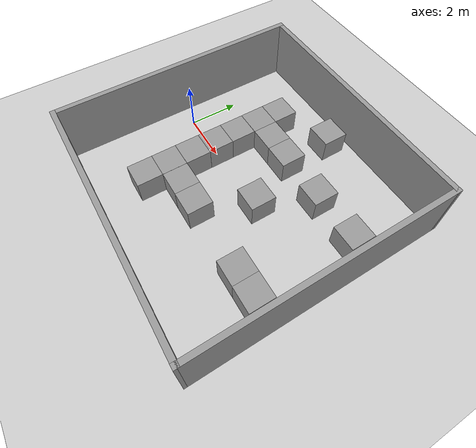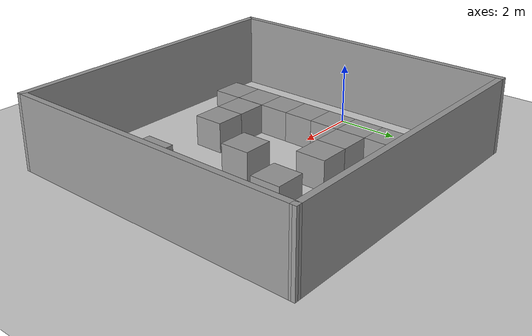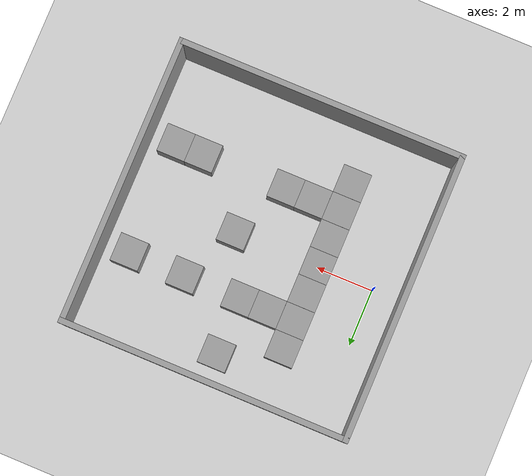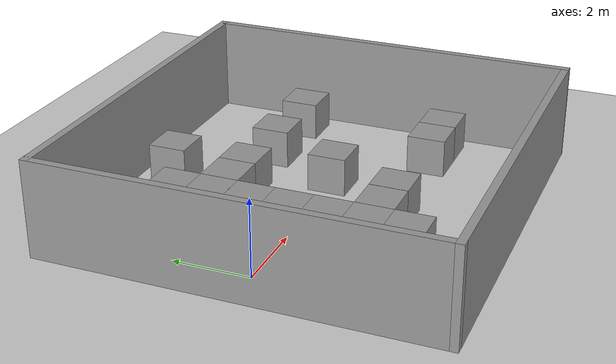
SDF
<sdf version="1.4">
 <world name="default">
  <light name="sun" type="directional">
   <pose>0 0 10 0 -0 0</pose>
   <diffuse>0.8 0.8 0.8 1</diffuse>
   <specular>0.2 0.2 0.2 1</specular>
   <attenuation>
    <range>1000</range>
    <constant>0.9</constant>
    <linear>0.01</linear>
    <quadratic>0.001</quadratic>
   </attenuation>
   <direction>-0.5 0.1 -0.9</direction>
  </light>
  <model name="ground_plane">
   <static>1</static>
   <link name="link">
    <collision name="collision">
     <geometry><plane><normal>0 0 1</normal><size>100 100</size></plane></geometry>
     <surface><friction><ode><mu>100</mu><mu2>50</mu2></ode></friction></surface>
    </collision>
    <visual name="visual">
     <cast_shadows>0</cast_shadows>
     <geometry><plane><normal>0 0 1</normal><size>100 100</size></plane></geometry>
     <material>
      <script><uri>file://media/materials/scripts/gazebo.material</uri><name>Gazebo/Grey</name></script>
     </material>
    </visual>
    <velocity_decay><linear>0</linear><angular>0</angular></velocity_decay>
   </link>
  </model>
  <physics type="ode">
   <max_step_size>0.001</max_step_size>
   <real_time_factor>1</real_time_factor>
   <real_time_update_rate>1000</real_time_update_rate>
   <gravity>0 0 -9.8</gravity>
  </physics>
  <scene><ambient>0.4 0.4 0.4 1</ambient><background>0.7 0.7 0.7 1</background><shadows>1</shadows></scene>
  <spherical_coordinates>
   <surface_model>EARTH_WGS84</surface_model>
   <latitude_deg>0</latitude_deg>
   <longitude_deg>0</longitude_deg>
   <elevation>0</elevation>
   <heading_deg>0</heading_deg>
  </spherical_coordinates>
  <model name="Square">
   <link name="Wall_10">
    <collision name="Wall_10_Collision">
     <geometry><box><size>10.2 0.2 2.5</size></box></geometry>
     <pose>0 0 1.25 0 -0 0</pose>
    </collision>
    <visual name="Wall_10_Visual">
     <pose>0 0 1.25 0 -0 0</pose>
     <geometry><box><size>10.2 0.2 2.5</size></box></geometry>
     <material>
      <script><uri>file://media/materials/scripts/gazebo.material</uri><name>Gazebo/Grey</name></script>
     </material>
    </visual>
    <velocity_decay><linear>0</linear><angular>0</angular></velocity_decay>
    <pose>4 -5 0 0 -0 3.14159</pose>
   </link>
   <link name="Wall_11">
    <collision name="Wall_11_Collision">
     <geometry><box><size>10.2 0.2 2.5</size></box></geometry>
     <pose>0 0 1.25 0 -0 0</pose>
    </collision>
    <visual name="Wall_11_Visual">
     <pose>0 0 1.25 0 -0 0</pose>
     <geometry><box><size>10.2 0.2 2.5</size></box></geometry>
     <material>
      <script><uri>file://media/materials/scripts/gazebo.material</uri><name>Gazebo/Grey</name></script>
     </material>
    </visual>
    <velocity_decay><linear>0</linear><angular>0</angular></velocity_decay>
    <pose>-1 0 0 0 -0 1.5708</pose>
   </link>
   <link name="Wall_12">
    <collision name="Wall_12_Collision">
     <geometry><box><size>10.208 0.2 2.5</size></box></geometry>
     <pose>0 0 1.25 0 -0 0</pose>
    </collision>
    <visual name="Wall_12_Visual">
     <pose>0 0 1.25 0 -0 0</pose>
     <geometry><box><size>10.208 0.2 2.5</size></box></geometry>
     <material>
      <script><uri>file://media/materials/scripts/gazebo.material</uri><name>Gazebo/Grey</name></script>
     </material>
    </visual>
    <velocity_decay><linear>0</linear><angular>0</angular></velocity_decay>
    <pose>4.004 5 0 0 -0 0</pose>
   </link>
   <link name="Wall_13">
    <collision name="Wall_13_Collision">
     <geometry><box><size>10.2 0.2 2.5</size></box></geometry>
     <pose>0 0 1.25 0 -0 0</pose>
    </collision>
    <visual name="Wall_13_Visual">
     <pose>0 0 1.25 0 -0 0</pose>
     <geometry><box><size>10.2 0.2 2.5</size></box></geometry>
     <material>
      <script><uri>file://media/materials/scripts/gazebo.material</uri><name>Gazebo/Grey</name></script>
     </material>
    </visual>
    <velocity_decay><linear>0</linear><angular>0</angular></velocity_decay>
    <pose>9.004 0 0 0 0 -1.5716</pose>
   </link>
   <static>1</static>
  </model>
  <model name="unit_box_5">
   <pose>1.9999 2.0003 0.5 0 -0 -9.5e-05</pose>
   <link name="link">
    <inertial>
     <mass>1</mass>
     <inertia><ixx>1</ixx><ixy>0</ixy><ixz>0</ixz><iyy>1</iyy><iyz>0</iyz><izz>1</izz></inertia>
    </inertial>
    <collision name="collision"><geometry><box><size>1 1 1</size></box></geometry></collision>
    <visual name="visual">
     <geometry><box><size>1 1 1</size></box></geometry>
     <material>
      <script><uri>file://media/materials/scripts/gazebo.material</uri><name>Gazebo/Grey</name></script>
     </material>
    </visual>
    <velocity_decay><linear>0</linear><angular>0</angular></velocity_decay>
   </link>
   <static>0</static>
  </model>
  <model name="unit_box_6">
   <pose>3.00014 -2.00006 0.49804 0 -0 -1.2e-05</pose>
   <link name="link">
    <inertial>
     <mass>1</mass>
     <inertia><ixx>1</ixx><ixy>0</ixy><ixz>0</ixz><iyy>1</iyy><iyz>0</iyz><izz>1</izz></inertia>
    </inertial>
    <collision name="collision"><geometry><box><size>1 1 1</size></box></geometry></collision>
    <visual name="visual">
     <geometry><box><size>1 1 1</size></box></geometry>
     <material>
      <script><uri>file://media/materials/scripts/gazebo.material</uri><name>Gazebo/Grey</name></script>
     </material>
    </visual>
    <velocity_decay><linear>0</linear><angular>0</angular></velocity_decay>
   </link>
   <static>0</static>
  </model>
  <model name="unit_box_7">
   <pose>4.00024 -1.99995 0.5 0 0 -1.3e-05</pose>
   <link name="link">
    <inertial>
     <mass>1</mass>
     <inertia><ixx>1</ixx><ixy>0</ixy><ixz>0</ixz><iyy>1</iyy><iyz>0</iyz><izz>1</izz></inertia>
    </inertial>
    <collision name="collision"><geometry><box><size>1 1 1</size></box></geometry></collision>
    <visual name="visual">
     <geometry><box><size>1 1 1</size></box></geometry>
     <material>
      <script><uri>file://media/materials/scripts/gazebo.material</uri><name>Gazebo/Grey</name></script>
     </material>
    </visual>
    <velocity_decay><linear>0</linear><angular>0</angular></velocity_decay>
   </link>
   <static>0</static>
  </model>
  <model name="unit_box_8">
   <pose>3.00019 1.99994 0.5 0 -0 0.000174</pose>
   <link name="link">
    <inertial>
     <mass>1</mass>
     <inertia><ixx>1</ixx><ixy>0</ixy><ixz>0</ixz><iyy>1</iyy><iyz>0</iyz><izz>1</izz></inertia>
    </inertial>
    <collision name="collision"><geometry><box><size>1 1 1</size></box></geometry></collision>
    <visual name="visual">
     <geometry><box><size>1 1 1</size></box></geometry>
     <material>
      <script><uri>file://media/materials/scripts/gazebo.material</uri><name>Gazebo/Grey</name></script>
     </material>
    </visual>
    <velocity_decay><linear>0</linear><angular>0</angular></velocity_decay>
   </link>
   <static>0</static>
  </model>
  <model name="unit_box_9">
   <pose>4.00028 1.99992 0.5 0 -0 0.000229</pose>
   <link name="link">
    <inertial>
     <mass>1</mass>
     <inertia><ixx>1</ixx><ixy>0</ixy><ixz>0</ixz><iyy>1</iyy><iyz>0</iyz><izz>1</izz></inertia>
    </inertial>
    <collision name="collision"><geometry><box><size>1 1 1</size></box></geometry></collision>
    <visual name="visual">
     <geometry><box><size>1 1 1</size></box></geometry>
     <material>
      <script><uri>file://media/materials/scripts/gazebo.material</uri><name>Gazebo/Grey</name></script>
     </material>
    </visual>
    <velocity_decay><linear>0</linear><angular>0</angular></velocity_decay>
   </link>
   <static>0</static>
  </model>
  <model name="unit_box_10">
   <pose>2.00009 -3.00039 0.5 0 -0 1.8e-05</pose>
   <link name="link">
    <inertial>
     <mass>1</mass>
     <inertia><ixx>1</ixx><ixy>0</ixy><ixz>0</ixz><iyy>1</iyy><iyz>0</iyz><izz>1</izz></inertia>
    </inertial>
    <collision name="collision"><geometry><box><size>1 1 1</size></box></geometry></collision>
    <visual name="visual">
     <geometry><box><size>1 1 1</size></box></geometry>
     <material>
      <script><uri>file://media/materials/scripts/gazebo.material</uri><name>Gazebo/Grey</name></script>
     </material>
    </visual>
    <velocity_decay><linear>0</linear><angular>0</angular></velocity_decay>
   </link>
   <static>0</static>
  </model>
  <model name="unit_box_12">
   <pose>2.00017 3.00039 0.499925 -1.1e-05 0.000161 7.3e-05</pose>
   <link name="link">
    <inertial>
     <mass>1</mass>
     <inertia><ixx>1</ixx><ixy>0</ixy><ixz>0</ixz><iyy>1</iyy><iyz>0</iyz><izz>1</izz></inertia>
    </inertial>
    <collision name="collision"><geometry><box><size>1 1 1</size></box></geometry></collision>
    <visual name="visual">
     <geometry><box><size>1 1 1</size></box></geometry>
     <material>
      <script><uri>file://media/materials/scripts/gazebo.material</uri><name>Gazebo/Grey</name></script>
     </material>
    </visual>
    <velocity_decay><linear>0</linear><angular>0</angular></velocity_decay>
   </link>
   <static>0</static>
  </model>
  <model name="unit_box_13">
   <pose>4 4 0.5 0 -0 0</pose>
   <link name="link">
    <inertial>
     <mass>1</mass>
     <inertia><ixx>1</ixx><ixy>0</ixy><ixz>0</ixz><iyy>1</iyy><iyz>0</iyz><izz>1</izz></inertia>
    </inertial>
    <collision name="collision"><geometry><box><size>1 1 1</size></box></geometry></collision>
    <visual name="visual">
     <geometry><box><size>1 1 1</size></box></geometry>
     <material>
      <script><uri>file://media/materials/scripts/gazebo.material</uri><name>Gazebo/Grey</name></script>
     </material>
    </visual>
    <velocity_decay><linear>0</linear><angular>0</angular></velocity_decay>
   </link>
   <static>0</static>
  </model>
  <model name="unit_box_15">
   <pose>6 2 0.5 0 -0 0</pose>
   <link name="link">
    <inertial>
     <mass>1</mass>
     <inertia><ixx>1</ixx><ixy>0</ixy><ixz>0</ixz><iyy>1</iyy><iyz>0</iyz><izz>1</izz></inertia>
    </inertial>
    <collision name="collision"><geometry><box><size>1 1 1</size></box></geometry></collision>
    <visual name="visual">
     <geometry><box><size>1 1 1</size></box></geometry>
     <material>
      <script><uri>file://media/materials/scripts/gazebo.material</uri><name>Gazebo/Grey</name></script>
     </material>
    </visual>
    <velocity_decay><linear>0</linear><angular>0</angular></velocity_decay>
   </link>
   <static>0</static>
  </model>
  <model name="unit_box_16">
   <pose>8 -2 0.5 0 -0 0</pose>
   <link name="link">
    <inertial>
     <mass>1</mass>
     <inertia><ixx>1</ixx><ixy>0</ixy><ixz>0</ixz><iyy>1</iyy><iyz>0</iyz><izz>1</izz></inertia>
    </inertial>
    <collision name="collision"><geometry><box><size>1 1 1</size></box></geometry></collision>
    <visual name="visual">
     <geometry><box><size>1 1 1</size></box></geometry>
     <material>
      <script><uri>file://media/materials/scripts/gazebo.material</uri><name>Gazebo/Grey</name></script>
     </material>
    </visual>
    <velocity_decay><linear>0</linear><angular>0</angular></velocity_decay>
   </link>
   <static>0</static>
  </model>
  <model name="unit_box_17">
   <pose>8 2 0.5 0 -0 0</pose>
   <link name="link">
    <inertial>
     <mass>1</mass>
     <inertia><ixx>1</ixx><ixy>0</ixy><ixz>0</ixz><iyy>1</iyy><iyz>0</iyz><izz>1</izz></inertia>
    </inertial>
    <collision name="collision"><geometry><box><size>1 1 1</size></box></geometry></collision>
    <visual name="visual">
     <geometry><box><size>1 1 1</size></box></geometry>
     <material>
      <script><uri>file://media/materials/scripts/gazebo.material</uri><name>Gazebo/Grey</name></script>
     </material>
    </visual>
    <velocity_decay><linear>0</linear><angular>0</angular></velocity_decay>
   </link>
   <static>0</static>
  </model>
  <model name="unit_box_18">
   <pose>5 0 0.5 0 -0 0</pose>
   <link name="link">
    <inertial>
     <mass>1</mass>
     <inertia><ixx>1</ixx><ixy>0</ixy><ixz>0</ixz><iyy>1</iyy><iyz>0</iyz><izz>1</izz></inertia>
    </inertial>
    <collision name="collision"><geometry><box><size>1 1 1</size></box></geometry></collision>
    <visual name="visual">
     <geometry><box><size>1 1 1</size></box></geometry>
     <material>
      <script><uri>file://media/materials/scripts/gazebo.material</uri><name>Gazebo/Grey</name></script>
     </material>
    </visual>
    <velocity_decay><linear>0</linear><angular>0</angular></velocity_decay>
   </link>
   <static>0</static>
  </model>
  <model name="unit_box_19">
   <pose>7 -2 0.5 0 -0 0</pose>
   <link name="link">
    <inertial>
     <mass>1</mass>
     <inertia><ixx>1</ixx><ixy>0</ixy><ixz>0</ixz><iyy>1</iyy><iyz>0</iyz><izz>1</izz></inertia>
    </inertial>
    <collision name="collision"><geometry><box><size>1 1 1</size></box></geometry></collision>
    <visual name="visual">
     <geometry><box><size>1 1 1</size></box></geometry>
     <material>
      <script><uri>file://media/materials/scripts/gazebo.material</uri><name>Gazebo/Grey</name></script>
     </material>
    </visual>
    <velocity_decay><linear>0</linear><angular>0</angular></velocity_decay>
   </link>
   <static>0</static>
  </model>
  <spherical_coordinates>
   <surface_model>EARTH_WGS84</surface_model>
   <latitude_deg>0</latitude_deg>
   <longitude_deg>0</longitude_deg>
   <elevation>0</elevation>
   <heading_deg>0</heading_deg>
  </spherical_coordinates>
  <model name="unit_box_1">
   <pose>1.99995 -2.00021 0.5 0 -0 2.3e-05</pose>
   <link name="link">
    <inertial>
     <mass>1</mass>
     <inertia><ixx>1</ixx><ixy>0</ixy><ixz>0</ixz><iyy>1</iyy><iyz>0</iyz><izz>1</izz></inertia>
    </inertial>
    <collision name="collision"><geometry><box><size>1 1 1</size></box></geometry></collision>
    <visual name="visual">
     <geometry><box><size>1 1 1</size></box></geometry>
     <material>
      <script><uri>file://media/materials/scripts/gazebo.material</uri><name>Gazebo/Grey</name></script>
     </material>
    </visual>
    <velocity_decay><linear>0</linear><angular>0</angular></velocity_decay>
   </link>
   <static>0</static>
  </model>
  <model name="unit_box_2">
   <pose>2.00006 -1.00019 0.499956 0 -8.9e-05 2.7e-05</pose>
   <link name="link">
    <inertial>
     <mass>1</mass>
     <inertia><ixx>1</ixx><ixy>0</ixy><ixz>0</ixz><iyy>1</iyy><iyz>0</iyz><izz>1</izz></inertia>
    </inertial>
    <collision name="collision"><geometry><box><size>1 1 1</size></box></geometry></collision>
    <visual name="visual">
     <geometry><box><size>1 1 1</size></box></geometry>
     <material>
      <script><uri>file://media/materials/scripts/gazebo.material</uri><name>Gazebo/Grey</name></script>
     </material>
    </visual>
    <velocity_decay><linear>0</linear><angular>0</angular></velocity_decay>
   </link>
   <static>0</static>
  </model>
  <model name="unit_box_3">
   <pose>2.0005 -3.8e-05 0.499857 0 0.000286 -0.000231</pose>
   <link name="link">
    <inertial>
     <mass>1</mass>
     <inertia><ixx>1</ixx><ixy>0</ixy><ixz>0</ixz><iyy>1</iyy><iyz>0</iyz><izz>1</izz></inertia>
    </inertial>
    <collision name="collision"><geometry><box><size>1 1 1</size></box></geometry></collision>
    <visual name="visual">
     <geometry><box><size>1 1 1</size></box></geometry>
     <material>
      <script><uri>file://media/materials/scripts/gazebo.material</uri><name>Gazebo/Grey</name></script>
     </material>
    </visual>
    <velocity_decay><linear>0</linear><angular>0</angular></velocity_decay>
   </link>
   <static>0</static>
  </model>
  <model name="unit_box_4">
   <pose>1.99994 1.00002 0.49907 -3.30872e-24 9.9e-05 -0.000211</pose>
   <link name="link">
    <inertial>
     <mass>1</mass>
     <inertia><ixx>1</ixx><ixy>0</ixy><ixz>0</ixz><iyy>1</iyy><iyz>0</iyz><izz>1</izz></inertia>
    </inertial>
    <collision name="collision"><geometry><box><size>1 1 1</size></box></geometry></collision>
    <visual name="visual">
     <geometry><box><size>1 1 1</size></box></geometry>
     <material>
      <script><uri>file://media/materials/scripts/gazebo.material</uri><name>Gazebo/Grey</name></script>
     </material>
    </visual>
    <velocity_decay><linear>0</linear><angular>0</angular></velocity_decay>
   </link>
   <static>0</static>
  </model>
 </world>
</sdf>
